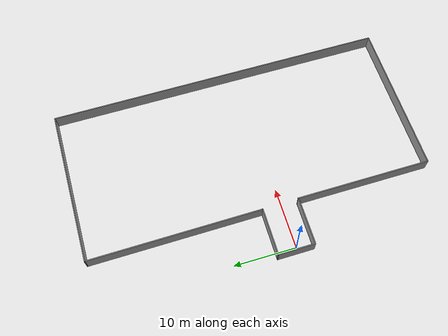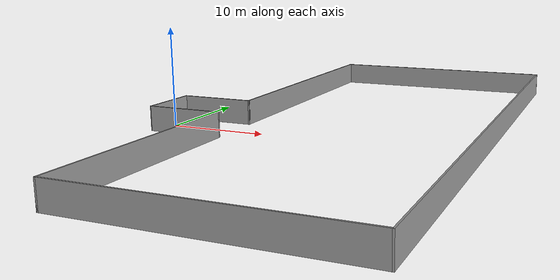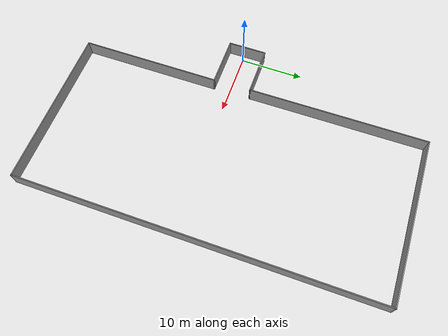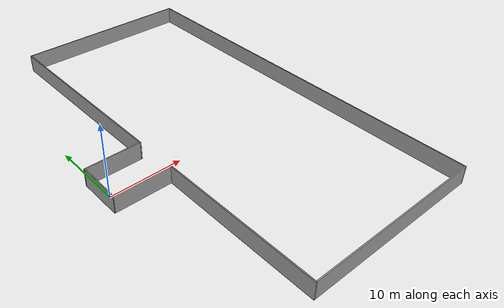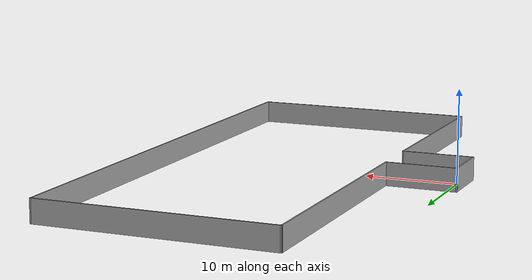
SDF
<?xml version='1.0'?>
<sdf version='1.6'>
  <model name='office_1'>
    <pose frame=''>15.4743 3.41032 0 0 -0 0</pose>
    <link name='Wall_0'>
      <collision name='Wall_0_Collision'>
        <geometry>
          <box>
            <size>7.75 0.15 2.5</size>
          </box>
        </geometry>
        <pose frame=''>0 0 1.25 0 -0 0</pose>
      </collision>
      <visual name='Wall_0_Visual'>
        <pose frame=''>0 0 1.25 0 -0 0</pose>
        <geometry>
          <box>
            <size>7.75 0.15 2.5</size>
          </box>
        </geometry>
        <material>
          <script>
            <uri>file://media/materials/scripts/gazebo.material</uri>
            <name>Gazebo/Grey</name>
          </script>
          <ambient>1 1 1 1</ambient>
        </material>
        <meta>
          <layer>0</layer>
        </meta>
      </visual>
      <pose frame=''>-12.5043 -5.95032 0 0 -0 0</pose>
    </link>
    <link name='Wall_10'>
      <collision name='Wall_10_Collision'>
        <geometry>
          <box>
            <size>6 0.15 2.5</size>
          </box>
        </geometry>
        <pose frame=''>0 0 1.25 0 -0 0</pose>
      </collision>
      <visual name='Wall_10_Visual'>
        <pose frame=''>0 0 1.25 0 -0 0</pose>
        <geometry>
          <box>
            <size>6 0.15 2.5</size>
          </box>
        </geometry>
        <material>
          <script>
            <uri>file://media/materials/scripts/gazebo.material</uri>
            <name>Gazebo/Grey</name>
          </script>
          <ambient>1 1 1 1</ambient>
        </material>
        <meta>
          <layer>0</layer>
        </meta>
      </visual>
      <pose frame=''>-16.3956 -3.00177 0 0 -0 -1.5708</pose>
    </link>
    <link name='Wall_2'>
      <collision name='Wall_2_Collision'>
        <geometry>
          <box>
            <size>22 0.15 2.5</size>
          </box>
        </geometry>
        <pose frame=''>0 0 1.25 0 -0 0</pose>
      </collision>
      <visual name='Wall_2_Visual'>
        <pose frame=''>0 0 1.25 0 -0 0</pose>
        <geometry>
          <box>
            <size>22 0.15 2.5</size>
          </box>
        </geometry>
        <material>
          <script>
            <uri>file://media/materials/scripts/gazebo.material</uri>
            <name>Gazebo/Grey</name>
          </script>
          <ambient>1 1 1 1</ambient>
        </material>
        <meta>
          <layer>0</layer>
        </meta>
      </visual>
      <pose frame=''>-8.70435 -16.8753 0 0 -0 -1.5708</pose>
    </link>
    <link name='Wall_3'>
      <collision name='Wall_3_Collision'>
        <geometry>
          <box>
            <size>25.25 0.15 2.5</size>
          </box>
        </geometry>
        <pose frame=''>0 0 1.25 0 -0 0</pose>
      </collision>
      <visual name='Wall_3_Visual'>
        <pose frame=''>0 0 1.25 0 -0 0</pose>
        <geometry>
          <box>
            <size>25.25 0.15 2.5</size>
          </box>
        </geometry>
        <material>
          <script>
            <uri>file://media/materials/scripts/gazebo.material</uri>
            <name>Gazebo/Grey</name>
          </script>
          <ambient>1 1 1 1</ambient>
        </material>
        <meta>
          <layer>0</layer>
        </meta>
      </visual>
      <pose frame=''>3.84565 -27.8003 0 0 -0 0</pose>
    </link>
    <link name='Wall_5'>
      <collision name='Wall_5_Collision'>
        <geometry>
          <box>
            <size>55.75 0.15 2.5</size>
          </box>
        </geometry>
        <pose frame=''>0 0 1.25 0 -0 0</pose>
      </collision>
      <visual name='Wall_5_Visual'>
        <pose frame=''>0 0 1.25 0 -0 0</pose>
        <geometry>
          <box>
            <size>55.75 0.15 2.5</size>
          </box>
        </geometry>
        <material>
          <script>
            <uri>file://media/materials/scripts/gazebo.material</uri>
            <name>Gazebo/Grey</name>
          </script>
          <ambient>1 1 1 1</ambient>
        </material>
        <meta>
          <layer>0</layer>
        </meta>
      </visual>
      <pose frame=''>16.3957 -0.000322 0 0 -0 1.5708</pose>
    </link>
    <link name='Wall_6'>
      <collision name='Wall_6_Collision'>
        <geometry>
          <box>
            <size>25.5 0.15 2.5</size>
          </box>
        </geometry>
        <pose frame=''>0 0 1.25 0 -0 0</pose>
      </collision>
      <visual name='Wall_6_Visual'>
        <pose frame=''>0 0 1.25 0 -0 0</pose>
        <geometry>
          <box>
            <size>25.5 0.15 2.5</size>
          </box>
        </geometry>
        <material>
          <script>
            <uri>file://media/materials/scripts/gazebo.material</uri>
            <name>Gazebo/Grey</name>
          </script>
          <ambient>1 1 1 1</ambient>
        </material>
        <meta>
          <layer>0</layer>
        </meta>
      </visual>
      <pose frame=''>3.72065 27.7997 0 0 -0 3.14159</pose>
    </link>
    <link name='Wall_7'>
      <collision name='Wall_7_Collision'>
        <geometry>
          <box>
            <size>28.0269 0.15 2.5</size>
          </box>
        </geometry>
        <pose frame=''>0 0 1.25 0 -0 0</pose>
      </collision>
      <visual name='Wall_7_Visual'>
        <pose frame=''>0 0 1.25 0 -0 0</pose>
        <geometry>
          <box>
            <size>28.0269 0.15 2.5</size>
          </box>
        </geometry>
        <material>
          <script>
            <uri>file://media/materials/scripts/gazebo.material</uri>
            <name>Gazebo/Grey</name>
          </script>
          <ambient>1 1 1 1</ambient>
        </material>
        <meta>
          <layer>0</layer>
        </meta>
      </visual>
      <pose frame=''>-8.88935 13.8617 0 0 -0 -1.56613</pose>
    </link>
    <link name='Wall_8'>
      <collision name='Wall_8_Collision'>
        <geometry>
          <box>
            <size>7.7213 0.15 2.5</size>
          </box>
        </geometry>
        <pose frame=''>0 0 1.25 0 -0 0</pose>
      </collision>
      <visual name='Wall_8_Visual'>
        <pose frame=''>0 0 1.25 0 -0 0</pose>
        <geometry>
          <box>
            <size>7.7213 0.15 2.5</size>
          </box>
        </geometry>
        <material>
          <script>
            <uri>file://media/materials/scripts/gazebo.material</uri>
            <name>Gazebo/Grey</name>
          </script>
          <ambient>1 1 1 1</ambient>
        </material>
        <meta>
          <layer>0</layer>
        </meta>
      </visual>
      <pose frame=''>-12.61 -0.076547 0 0 -0 -3.14153</pose>
    </link>
    <static>1</static>
  </model>
</sdf>
